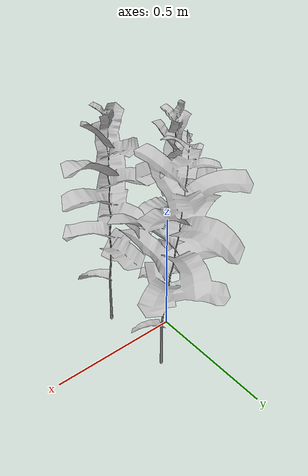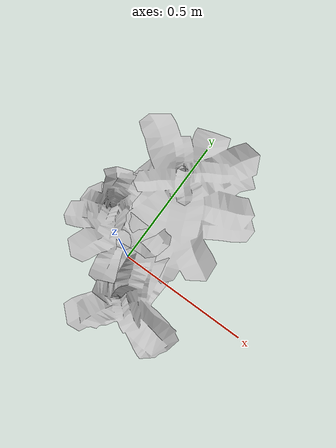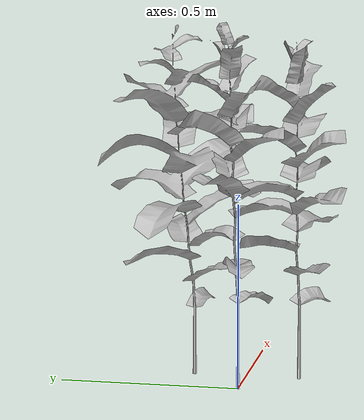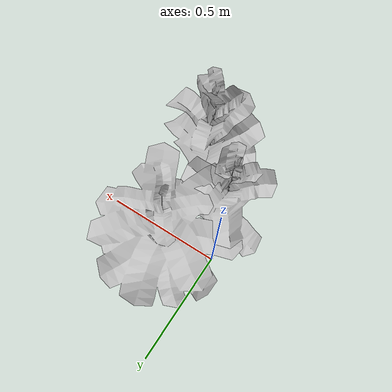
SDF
<?xml version="1.0" ?>
<sdf version="1.6">
  <model name="weed2">
    <static>1</static>
    <link name="weed2_1">

      <visual name="branch">
        <geometry>
          <mesh>
            <uri>model://weed2/meshes/GC03_1.obj</uri>
          </mesh>
        </geometry>

        <cast_shadows>1</cast_shadows>
      </visual>
    </link>
    <link name="weed2_2">

      <visual name="weed2_2">
        <geometry>
          <mesh>
            <uri>model://weed2/meshes/GC03_2.obj</uri>
          </mesh>
        </geometry>
        <cast_shadows>1</cast_shadows>
      </visual>
        <pose>0.15 -0.15 0 0 0 0</pose>
    </link>
    <link name="weed2_3">

      <visual name="weed2_3">
        <geometry>
          <mesh>
            <uri>model://weed2/meshes/GC03_3.obj</uri>
          </mesh>
        </geometry>
        <cast_shadows>1</cast_shadows>
      </visual>
        <pose>0.15 0.15 0 0 0 0</pose>
    </link>
  </model>
</sdf>
